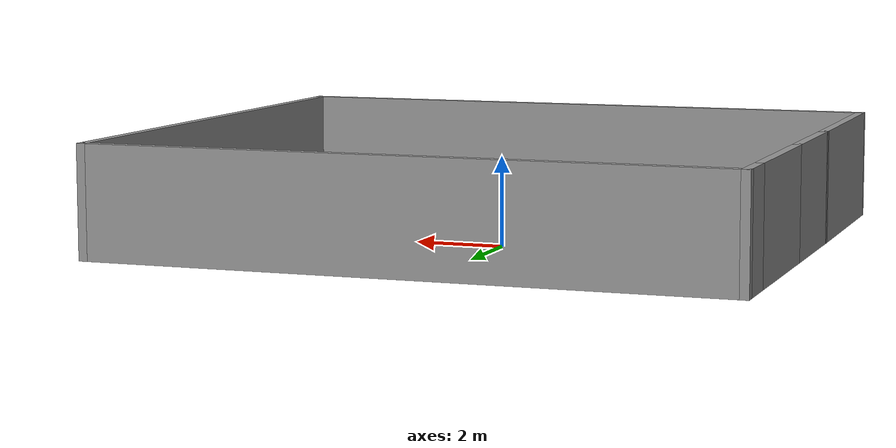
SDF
<?xml version='1.0'?>
<sdf version='1.4'>
  <model name='walled'>
    <link name='Wall_1'>
      <collision name='Wall_1_Collision'>
        <geometry>
          <box>
            <size>3.02883 0.2 2.5</size>
          </box>
        </geometry>
        <pose>0 0 1.25 0 -0 0</pose>
      </collision>
      <visual name='Wall_1_Visual'>
        <pose>0 0 1.25 0 -0 0</pose>
        <geometry>
          <box>
            <size>3.02883 0.2 2.5</size>
          </box>
        </geometry>
        <material>
          <script>
            <uri>file://media/materials/scripts/gazebo.material</uri>
            <name>Gazebo/Grey</name>
          </script>
        </material>
      </visual>
      <velocity_decay>
        <linear>0</linear>
        <angular>0</angular>
      </velocity_decay>
      <pose>-6.55501 -1.36193 0 0 -0 1.5708</pose>
    </link>
    <link name='Wall_2'>
      <collision name='Wall_2_Collision'>
        <geometry>
          <box>
            <size>3.7448 0.2 2.5</size>
          </box>
        </geometry>
        <pose>0 0 1.25 0 -0 0</pose>
      </collision>
      <visual name='Wall_2_Visual'>
        <pose>0 0 1.25 0 -0 0</pose>
        <geometry>
          <box>
            <size>3.7448 0.2 2.5</size>
          </box>
        </geometry>
        <material>
          <script>
            <uri>file://media/materials/scripts/gazebo.material</uri>
            <name>Gazebo/Grey</name>
          </script>
        </material>
      </visual>
      <velocity_decay>
        <linear>0</linear>
        <angular>0</angular>
      </velocity_decay>
      <pose>-6.55501 1.82489 0 0 -0 1.5708</pose>
    </link>
    <link name='Wall_3'>
      <collision name='Wall_3_Collision'>
        <geometry>
          <box>
            <size>1.37705 0.2 2.5</size>
          </box>
        </geometry>
        <pose>0 0 1.25 0 -0 0</pose>
      </collision>
      <visual name='Wall_3_Visual'>
        <pose>0 0 1.25 0 -0 0</pose>
        <geometry>
          <box>
            <size>1.37705 0.2 2.5</size>
          </box>
        </geometry>
        <material>
          <script>
            <uri>file://media/materials/scripts/gazebo.material</uri>
            <name>Gazebo/Grey</name>
          </script>
        </material>
      </visual>
      <velocity_decay>
        <linear>0</linear>
        <angular>0</angular>
      </velocity_decay>
      <pose>-6.55501 4.18582 0 0 -0 1.5708</pose>
    </link>
    <link name='Wall_4'>
      <collision name='Wall_4_Collision'>
        <geometry>
          <box>
            <size>14.4141 0.2 2.5</size>
          </box>
        </geometry>
        <pose>0 0 1.25 0 -0 0</pose>
      </collision>
      <visual name='Wall_4_Visual'>
        <pose>0 0 1.25 0 -0 0</pose>
        <geometry>
          <box>
            <size>14.4141 0.2 2.5</size>
          </box>
        </geometry>
        <material>
          <script>
            <uri>file://media/materials/scripts/gazebo.material</uri>
            <name>Gazebo/Grey</name>
          </script>
        </material>
      </visual>
      <velocity_decay>
        <linear>0</linear>
        <angular>0</angular>
      </velocity_decay>
      <pose>0.552028 4.77434 0 0 -0 0</pose>
    </link>
    <link name='Wall_5'>
      <collision name='Wall_5_Collision'>
        <geometry>
          <box>
            <size>12.5591 0.2 2.5</size>
          </box>
        </geometry>
        <pose>0 0 1.25 0 -0 0</pose>
      </collision>
      <visual name='Wall_5_Visual'>
        <pose>0 0 1.25 0 -0 0</pose>
        <geometry>
          <box>
            <size>12.5591 0.2 2.5</size>
          </box>
        </geometry>
        <material>
          <script>
            <uri>file://media/materials/scripts/gazebo.material</uri>
            <name>Gazebo/Grey</name>
          </script>
        </material>
      </visual>
      <velocity_decay>
        <linear>0</linear>
        <angular>0</angular>
      </velocity_decay>
      <pose>7.65907 -1.40519 0 0 0 -1.5708</pose>
    </link>
    <link name='Wall_6'>
      <collision name='Wall_6_Collision'>
        <geometry>
          <box>
            <size>14.3782 0.2 2.5</size>
          </box>
        </geometry>
        <pose>0 0 1.25 0 -0 0</pose>
      </collision>
      <visual name='Wall_6_Visual'>
        <pose>0 0 1.25 0 -0 0</pose>
        <geometry>
          <box>
            <size>14.3782 0.2 2.5</size>
          </box>
        </geometry>
        <material>
          <script>
            <uri>file://media/materials/scripts/gazebo.material</uri>
            <name>Gazebo/Grey</name>
          </script>
        </material>
      </visual>
      <velocity_decay>
        <linear>0</linear>
        <angular>0</angular>
      </velocity_decay>
      <pose>0.569986 -7.58473 0 0 -0 3.14159</pose>
    </link>
    <link name='Wall_7'>
      <collision name='Wall_7_Collision'>
        <geometry>
          <box>
            <size>5.00853 0.2 2.5</size>
          </box>
        </geometry>
        <pose>0 0 1.25 0 -0 0</pose>
      </collision>
      <visual name='Wall_7_Visual'>
        <pose>0 0 1.25 0 -0 0</pose>
        <geometry>
          <box>
            <size>5.00853 0.2 2.5</size>
          </box>
        </geometry>
        <material>
          <script>
            <uri>file://media/materials/scripts/gazebo.material</uri>
            <name>Gazebo/Grey</name>
          </script>
        </material>
      </visual>
      <velocity_decay>
        <linear>0</linear>
        <angular>0</angular>
      </velocity_decay>
      <pose>-6.53705 -5.18054 0 0 -0 1.57827</pose>
    </link>
    <link name='Wall_8'>
      <collision name='Wall_8_Collision'>
        <geometry>
          <box>
            <size>0.2 0.2 2.5</size>
          </box>
        </geometry>
        <pose>0 0 1.25 0 -0 0</pose>
      </collision>
      <visual name='Wall_8_Visual'>
        <pose>0 0 1.25 0 -0 0</pose>
        <geometry>
          <box>
            <size>0.2 0.2 2.5</size>
          </box>
        </geometry>
        <material>
          <script>
            <uri>file://media/materials/scripts/gazebo.material</uri>
            <name>Gazebo/Grey</name>
          </script>
        </material>
      </visual>
      <velocity_decay>
        <linear>0</linear>
        <angular>0</angular>
      </velocity_decay>
      <pose>-6.55501 -2.77634 0 0 -0 0</pose>
    </link>
    <static>1</static>
  </model>
</sdf>
